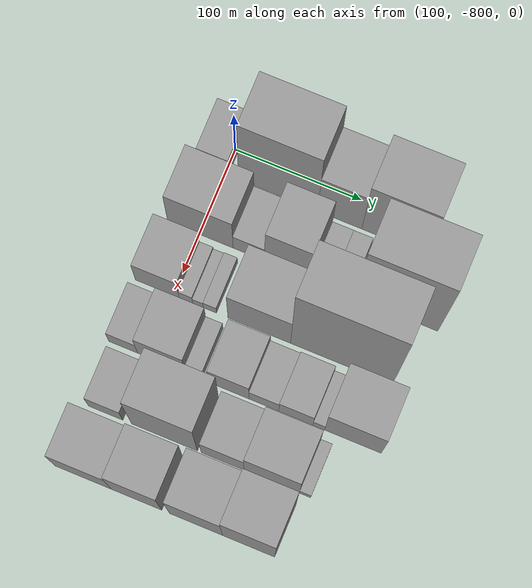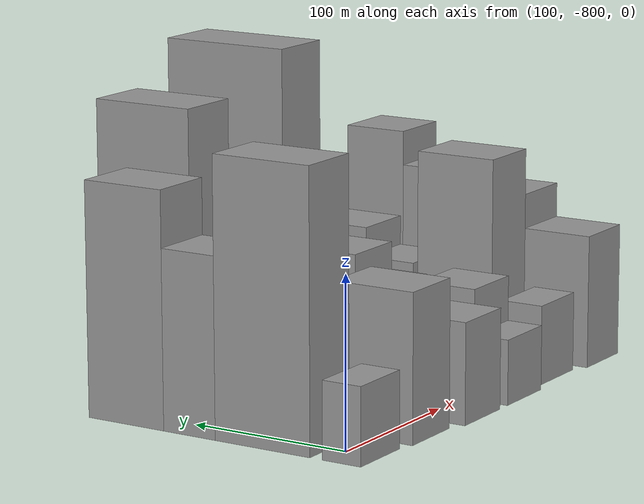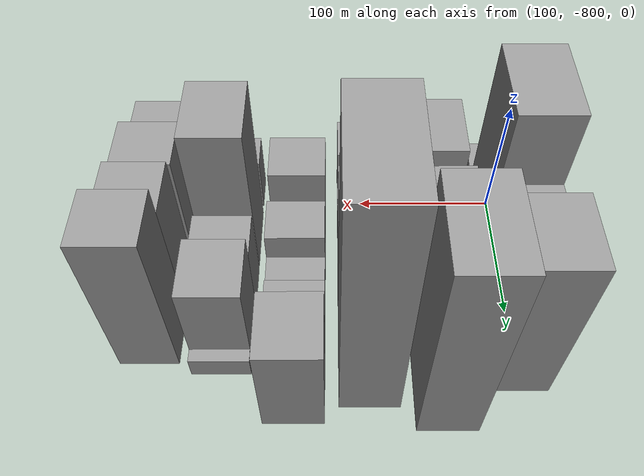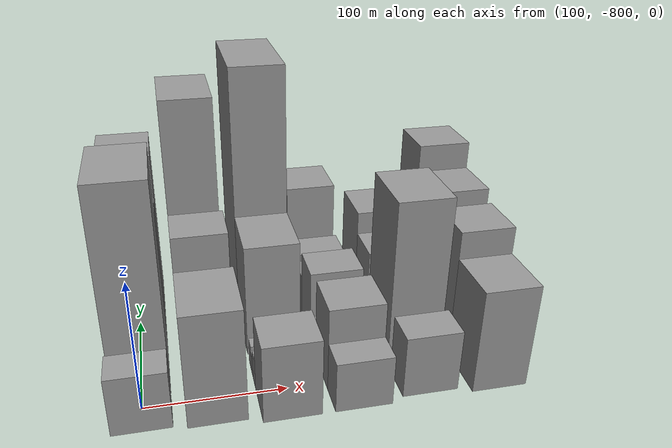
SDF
<sdf version="1.6">
 <world name="default">
  <model name="building_1">
   <static>1</static>
   <pose>100.0000 -809.6743 0 0.000000 0.000000 0.000000</pose>
   <link name="link">
    <pose>0 0 22.50 0 0 0</pose>
    <collision name="collision"><geometry><box><size>40.0000 24.6514 45.0000</size></box></geometry></collision>
    <visual name="visual">
     <cast_shadows>0</cast_shadows>
     <geometry><box><size>40.0000 24.6514 45.0000</size></box></geometry>
     <material>
      <script>
       <uri>model://grey_wall/materials/scripts</uri>
       <uri>model://grey_wall/materials/textures</uri>
       <name>vrc/grey_wall</name>
      </script>
     </material>
    </visual>
   </link>
  </model>
  <model name="building_2">
   <static>1</static>
   <pose>100.0000 -758.1193 0 0.000000 0.000000 0.000000</pose>
   <link name="link">
    <pose>0 0 81.00 0 0 0</pose>
    <collision name="collision"><geometry><box><size>40.0000 62.4585 162.0000</size></box></geometry></collision>
    <visual name="visual">
     <cast_shadows>0</cast_shadows>
     <geometry><box><size>40.0000 62.4585 162.0000</size></box></geometry>
     <material>
      <script>
       <uri>model://grey_wall/materials/scripts</uri>
       <uri>model://grey_wall/materials/textures</uri>
       <name>vrc/grey_wall</name>
      </script>
     </material>
    </visual>
   </link>
  </model>
  <model name="building_3">
   <static>1</static>
   <pose>100.0000 -709.3897 0 0.000000 0.000000 0.000000</pose>
   <link name="link">
    <pose>0 0 52.50 0 0 0</pose>
    <collision name="collision"><geometry><box><size>40.0000 35.0008 105.0000</size></box></geometry></collision>
    <visual name="visual">
     <cast_shadows>0</cast_shadows>
     <geometry><box><size>40.0000 35.0008 105.0000</size></box></geometry>
     <material>
      <script>
       <uri>model://grey_wall/materials/scripts</uri>
       <uri>model://grey_wall/materials/textures</uri>
       <name>vrc/grey_wall</name>
      </script>
     </material>
    </visual>
   </link>
  </model>
  <model name="building_4">
   <static>1</static>
   <pose>100.0000 -665.8691 0 0.000000 0.000000 0.000000</pose>
   <link name="link">
    <pose>0 0 69.00 0 0 0</pose>
    <collision name="collision"><geometry><box><size>40.0000 52.0404 138.0000</size></box></geometry></collision>
    <visual name="visual">
     <cast_shadows>0</cast_shadows>
     <geometry><box><size>40.0000 52.0404 138.0000</size></box></geometry>
     <material>
      <script>
       <uri>model://grey_wall/materials/scripts</uri>
       <uri>model://grey_wall/materials/textures</uri>
       <name>vrc/grey_wall</name>
      </script>
     </material>
    </visual>
   </link>
  </model>
  <model name="building_43">
   <static>1</static>
   <pose>149.0000 -799.1433 0 0.000000 0.000000 0.000000</pose>
   <link name="link">
    <pose>0 0 43.50 0 0 0</pose>
    <collision name="collision"><geometry><box><size>40.0000 51.7134 87.0000</size></box></geometry></collision>
    <visual name="visual">
     <cast_shadows>0</cast_shadows>
     <geometry><box><size>40.0000 51.7134 87.0000</size></box></geometry>
     <material>
      <script>
       <uri>model://grey_wall/materials/scripts</uri>
       <uri>model://grey_wall/materials/textures</uri>
       <name>vrc/grey_wall</name>
      </script>
     </material>
    </visual>
   </link>
  </model>
  <model name="building_44">
   <static>1</static>
   <pose>149.0000 -760.8432 0 0.000000 0.000000 0.000000</pose>
   <link name="link">
    <pose>0 0 21.00 0 0 0</pose>
    <collision name="collision"><geometry><box><size>40.0000 24.8867 42.0000</size></box></geometry></collision>
    <visual name="visual">
     <cast_shadows>0</cast_shadows>
     <geometry><box><size>40.0000 24.8867 42.0000</size></box></geometry>
     <material>
      <script>
       <uri>model://grey_wall/materials/scripts</uri>
       <uri>model://grey_wall/materials/textures</uri>
       <name>vrc/grey_wall</name>
      </script>
     </material>
    </visual>
   </link>
  </model>
  <model name="building_45">
   <static>1</static>
   <pose>149.0000 -730.2889 0 0.000000 0.000000 0.000000</pose>
   <link name="link">
    <pose>0 0 49.50 0 0 0</pose>
    <collision name="collision"><geometry><box><size>40.0000 36.2220 99.0000</size></box></geometry></collision>
    <visual name="visual">
     <cast_shadows>0</cast_shadows>
     <geometry><box><size>40.0000 36.2220 99.0000</size></box></geometry>
     <material>
      <script>
       <uri>model://grey_wall/materials/scripts</uri>
       <uri>model://grey_wall/materials/textures</uri>
       <name>vrc/grey_wall</name>
      </script>
     </material>
    </visual>
   </link>
  </model>
  <model name="building_46">
   <static>1</static>
   <pose>149.0000 -703.9637 0 0.000000 0.000000 0.000000</pose>
   <link name="link">
    <pose>0 0 15.00 0 0 0</pose>
    <collision name="collision"><geometry><box><size>40.0000 16.4283 30.0000</size></box></geometry></collision>
    <visual name="visual">
     <cast_shadows>0</cast_shadows>
     <geometry><box><size>40.0000 16.4283 30.0000</size></box></geometry>
     <material>
      <script>
       <uri>model://grey_wall/materials/scripts</uri>
       <uri>model://grey_wall/materials/textures</uri>
       <name>vrc/grey_wall</name>
      </script>
     </material>
    </visual>
   </link>
  </model>
  <model name="building_47">
   <static>1</static>
   <pose>149.0000 -688.1897 0 0.000000 0.000000 0.000000</pose>
   <link name="link">
    <pose>0 0 15.00 0 0 0</pose>
    <collision name="collision"><geometry><box><size>40.0000 15.1197 30.0000</size></box></geometry></collision>
    <visual name="visual">
     <cast_shadows>0</cast_shadows>
     <geometry><box><size>40.0000 15.1197 30.0000</size></box></geometry>
     <material>
      <script>
       <uri>model://grey_wall/materials/scripts</uri>
       <uri>model://grey_wall/materials/textures</uri>
       <name>vrc/grey_wall</name>
      </script>
     </material>
    </visual>
   </link>
  </model>
  <model name="building_48">
   <static>1</static>
   <pose>149.0000 -644.5503 0 0.000000 0.000000 0.000000</pose>
   <link name="link">
    <pose>0 0 87.00 0 0 0</pose>
    <collision name="collision"><geometry><box><size>40.0000 64.1589 174.0000</size></box></geometry></collision>
    <visual name="visual">
     <cast_shadows>0</cast_shadows>
     <geometry><box><size>40.0000 64.1589 174.0000</size></box></geometry>
     <material>
      <script>
       <uri>model://grey_wall/materials/scripts</uri>
       <uri>model://grey_wall/materials/textures</uri>
       <name>vrc/grey_wall</name>
      </script>
     </material>
    </visual>
   </link>
  </model>
  <model name="building_88">
   <static>1</static>
   <pose>198.0000 -812.7470 0 0.000000 0.000000 0.000000</pose>
   <link name="link">
    <pose>0 0 30.00 0 0 0</pose>
    <collision name="collision"><geometry><box><size>40.0000 34.5060 60.0000</size></box></geometry></collision>
    <visual name="visual">
     <cast_shadows>0</cast_shadows>
     <geometry><box><size>40.0000 34.5060 60.0000</size></box></geometry>
     <material>
      <script>
       <uri>model://grey_wall/materials/scripts</uri>
       <uri>model://grey_wall/materials/textures</uri>
       <name>vrc/grey_wall</name>
      </script>
     </material>
    </visual>
   </link>
  </model>
  <model name="building_89">
   <static>1</static>
   <pose>198.0000 -790.1452 0 0.000000 0.000000 0.000000</pose>
   <link name="link">
    <pose>0 0 12.00 0 0 0</pose>
    <collision name="collision"><geometry><box><size>40.0000 10.6977 24.0000</size></box></geometry></collision>
    <visual name="visual">
     <cast_shadows>0</cast_shadows>
     <geometry><box><size>40.0000 10.6977 24.0000</size></box></geometry>
     <material>
      <script>
       <uri>model://grey_wall/materials/scripts</uri>
       <uri>model://grey_wall/materials/textures</uri>
       <name>vrc/grey_wall</name>
      </script>
     </material>
    </visual>
   </link>
  </model>
  <model name="building_90">
   <static>1</static>
   <pose>198.0000 -780.5945 0 0.000000 0.000000 0.000000</pose>
   <link name="link">
    <pose>0 0 9.00 0 0 0</pose>
    <collision name="collision"><geometry><box><size>40.0000 8.4039 18.0000</size></box></geometry></collision>
    <visual name="visual">
     <cast_shadows>0</cast_shadows>
     <geometry><box><size>40.0000 8.4039 18.0000</size></box></geometry>
     <material>
      <script>
       <uri>model://grey_wall/materials/scripts</uri>
       <uri>model://grey_wall/materials/textures</uri>
       <name>vrc/grey_wall</name>
      </script>
     </material>
    </visual>
   </link>
  </model>
  <model name="building_91">
   <static>1</static>
   <pose>198.0000 -771.1914 0 0.000000 0.000000 0.000000</pose>
   <link name="link">
    <pose>0 0 10.50 0 0 0</pose>
    <collision name="collision"><geometry><box><size>40.0000 10.4023 21.0000</size></box></geometry></collision>
    <visual name="visual">
     <cast_shadows>0</cast_shadows>
     <geometry><box><size>40.0000 10.4023 21.0000</size></box></geometry>
     <material>
      <script>
       <uri>model://grey_wall/materials/scripts</uri>
       <uri>model://grey_wall/materials/textures</uri>
       <name>vrc/grey_wall</name>
      </script>
     </material>
    </visual>
   </link>
  </model>
  <model name="building_92">
   <static>1</static>
   <pose>198.0000 -732.4139 0 0.000000 0.000000 0.000000</pose>
   <link name="link">
    <pose>0 0 45.00 0 0 0</pose>
    <collision name="collision"><geometry><box><size>40.0000 49.1527 90.0000</size></box></geometry></collision>
    <visual name="visual">
     <cast_shadows>0</cast_shadows>
     <geometry><box><size>40.0000 49.1527 90.0000</size></box></geometry>
     <material>
      <script>
       <uri>model://grey_wall/materials/scripts</uri>
       <uri>model://grey_wall/materials/textures</uri>
       <name>vrc/grey_wall</name>
      </script>
     </material>
    </visual>
   </link>
  </model>
  <model name="building_93">
   <static>1</static>
   <pose>198.0000 -668.1284 0 0.000000 0.000000 0.000000</pose>
   <link name="link">
    <pose>0 0 102.00 0 0 0</pose>
    <collision name="collision"><geometry><box><size>40.0000 79.4184 204.0000</size></box></geometry></collision>
    <visual name="visual">
     <cast_shadows>0</cast_shadows>
     <geometry><box><size>40.0000 79.4184 204.0000</size></box></geometry>
     <material>
      <script>
       <uri>model://grey_wall/materials/scripts</uri>
       <uri>model://grey_wall/materials/textures</uri>
       <name>vrc/grey_wall</name>
      </script>
     </material>
    </visual>
   </link>
  </model>
  <model name="building_132">
   <static>1</static>
   <pose>247.0000 -818.7364 0 0.000000 0.000000 0.000000</pose>
   <link name="link">
    <pose>0 0 19.50 0 0 0</pose>
    <collision name="collision"><geometry><box><size>40.0000 22.5273 39.0000</size></box></geometry></collision>
    <visual name="visual">
     <cast_shadows>0</cast_shadows>
     <geometry><box><size>40.0000 22.5273 39.0000</size></box></geometry>
     <material>
      <script>
       <uri>model://grey_wall/materials/scripts</uri>
       <uri>model://grey_wall/materials/textures</uri>
       <name>vrc/grey_wall</name>
      </script>
     </material>
    </visual>
   </link>
  </model>
  <model name="building_133">
   <static>1</static>
   <pose>247.0000 -788.8290 0 0.000000 0.000000 0.000000</pose>
   <link name="link">
    <pose>0 0 33.00 0 0 0</pose>
    <collision name="collision"><geometry><box><size>40.0000 37.2874 66.0000</size></box></geometry></collision>
    <visual name="visual">
     <cast_shadows>0</cast_shadows>
     <geometry><box><size>40.0000 37.2874 66.0000</size></box></geometry>
     <material>
      <script>
       <uri>model://grey_wall/materials/scripts</uri>
       <uri>model://grey_wall/materials/textures</uri>
       <name>vrc/grey_wall</name>
      </script>
     </material>
    </visual>
   </link>
  </model>
  <model name="building_134">
   <static>1</static>
   <pose>247.0000 -763.6136 0 0.000000 0.000000 0.000000</pose>
   <link name="link">
    <pose>0 0 13.50 0 0 0</pose>
    <collision name="collision"><geometry><box><size>40.0000 13.1435 27.0000</size></box></geometry></collision>
    <visual name="visual">
     <cast_shadows>0</cast_shadows>
     <geometry><box><size>40.0000 13.1435 27.0000</size></box></geometry>
     <material>
      <script>
       <uri>model://grey_wall/materials/scripts</uri>
       <uri>model://grey_wall/materials/textures</uri>
       <name>vrc/grey_wall</name>
      </script>
     </material>
    </visual>
   </link>
  </model>
  <model name="building_135">
   <static>1</static>
   <pose>247.0000 -736.0739 0 0.000000 0.000000 0.000000</pose>
   <link name="link">
    <pose>0 0 30.00 0 0 0</pose>
    <collision name="collision"><geometry><box><size>40.0000 31.9359 60.0000</size></box></geometry></collision>
    <visual name="visual">
     <cast_shadows>0</cast_shadows>
     <geometry><box><size>40.0000 31.9359 60.0000</size></box></geometry>
     <material>
      <script>
       <uri>model://grey_wall/materials/scripts</uri>
       <uri>model://grey_wall/materials/textures</uri>
       <name>vrc/grey_wall</name>
      </script>
     </material>
    </visual>
   </link>
  </model>
  <model name="building_136">
   <static>1</static>
   <pose>247.0000 -708.5276 0 0.000000 0.000000 0.000000</pose>
   <link name="link">
    <pose>0 0 19.50 0 0 0</pose>
    <collision name="collision"><geometry><box><size>40.0000 23.1567 39.0000</size></box></geometry></collision>
    <visual name="visual">
     <cast_shadows>0</cast_shadows>
     <geometry><box><size>40.0000 23.1567 39.0000</size></box></geometry>
     <material>
      <script>
       <uri>model://grey_wall/materials/scripts</uri>
       <uri>model://grey_wall/materials/textures</uri>
       <name>vrc/grey_wall</name>
      </script>
     </material>
    </visual>
   </link>
  </model>
  <model name="building_137">
   <static>1</static>
   <pose>247.0000 -683.6351 0 0.000000 0.000000 0.000000</pose>
   <link name="link">
    <pose>0 0 22.50 0 0 0</pose>
    <collision name="collision"><geometry><box><size>40.0000 26.6282 45.0000</size></box></geometry></collision>
    <visual name="visual">
     <cast_shadows>0</cast_shadows>
     <geometry><box><size>40.0000 26.6282 45.0000</size></box></geometry>
     <material>
      <script>
       <uri>model://grey_wall/materials/scripts</uri>
       <uri>model://grey_wall/materials/textures</uri>
       <name>vrc/grey_wall</name>
      </script>
     </material>
    </visual>
   </link>
  </model>
  <model name="building_138">
   <static>1</static>
   <pose>247.0000 -665.7167 0 0.000000 0.000000 0.000000</pose>
   <link name="link">
    <pose>0 0 10.50 0 0 0</pose>
    <collision name="collision"><geometry><box><size>40.0000 9.2086 21.0000</size></box></geometry></collision>
    <visual name="visual">
     <cast_shadows>0</cast_shadows>
     <geometry><box><size>40.0000 9.2086 21.0000</size></box></geometry>
     <material>
      <script>
       <uri>model://grey_wall/materials/scripts</uri>
       <uri>model://grey_wall/materials/textures</uri>
       <name>vrc/grey_wall</name>
      </script>
     </material>
    </visual>
   </link>
  </model>
  <model name="building_139">
   <static>1</static>
   <pose>247.0000 -639.1347 0 0.000000 0.000000 0.000000</pose>
   <link name="link">
    <pose>0 0 43.50 0 0 0</pose>
    <collision name="collision"><geometry><box><size>40.0000 43.9554 87.0000</size></box></geometry></collision>
    <visual name="visual">
     <cast_shadows>0</cast_shadows>
     <geometry><box><size>40.0000 43.9554 87.0000</size></box></geometry>
     <material>
      <script>
       <uri>model://grey_wall/materials/scripts</uri>
       <uri>model://grey_wall/materials/textures</uri>
       <name>vrc/grey_wall</name>
      </script>
     </material>
    </visual>
   </link>
  </model>
  <model name="building_179">
   <static>1</static>
   <pose>296.0000 -811.6144 0 0.000000 0.000000 0.000000</pose>
   <link name="link">
    <pose>0 0 24.00 0 0 0</pose>
    <collision name="collision"><geometry><box><size>40.0000 26.7713 48.0000</size></box></geometry></collision>
    <visual name="visual">
     <cast_shadows>0</cast_shadows>
     <geometry><box><size>40.0000 26.7713 48.0000</size></box></geometry>
     <material>
      <script>
       <uri>model://grey_wall/materials/scripts</uri>
       <uri>model://grey_wall/materials/textures</uri>
       <name>vrc/grey_wall</name>
      </script>
     </material>
    </visual>
   </link>
  </model>
  <model name="building_180">
   <static>1</static>
   <pose>296.0000 -765.5930 0 0.000000 0.000000 0.000000</pose>
   <link name="link">
    <pose>0 0 66.00 0 0 0</pose>
    <collision name="collision"><geometry><box><size>40.0000 51.2715 132.0000</size></box></geometry></collision>
    <visual name="visual">
     <cast_shadows>0</cast_shadows>
     <geometry><box><size>40.0000 51.2715 132.0000</size></box></geometry>
     <material>
      <script>
       <uri>model://grey_wall/materials/scripts</uri>
       <uri>model://grey_wall/materials/textures</uri>
       <name>vrc/grey_wall</name>
      </script>
     </material>
    </visual>
   </link>
  </model>
  <model name="building_181">
   <static>1</static>
   <pose>296.0000 -720.2961 0 0.000000 0.000000 0.000000</pose>
   <link name="link">
    <pose>0 0 31.50 0 0 0</pose>
    <collision name="collision"><geometry><box><size>40.0000 33.3223 63.0000</size></box></geometry></collision>
    <visual name="visual">
     <cast_shadows>0</cast_shadows>
     <geometry><box><size>40.0000 33.3223 63.0000</size></box></geometry>
     <material>
      <script>
       <uri>model://grey_wall/materials/scripts</uri>
       <uri>model://grey_wall/materials/textures</uri>
       <name>vrc/grey_wall</name>
      </script>
     </material>
    </visual>
   </link>
  </model>
  <model name="building_182">
   <static>1</static>
   <pose>296.0000 -682.2127 0 0.000000 0.000000 0.000000</pose>
   <link name="link">
    <pose>0 0 40.50 0 0 0</pose>
    <collision name="collision"><geometry><box><size>40.0000 42.8445 81.0000</size></box></geometry></collision>
    <visual name="visual">
     <cast_shadows>0</cast_shadows>
     <geometry><box><size>40.0000 42.8445 81.0000</size></box></geometry>
     <material>
      <script>
       <uri>model://grey_wall/materials/scripts</uri>
       <uri>model://grey_wall/materials/textures</uri>
       <name>vrc/grey_wall</name>
      </script>
     </material>
    </visual>
   </link>
  </model>
  <model name="building_183">
   <static>1</static>
   <pose>296.0000 -656.3661 0 0.000000 0.000000 0.000000</pose>
   <link name="link">
    <pose>0 0 9.00 0 0 0</pose>
    <collision name="collision"><geometry><box><size>40.0000 8.8486 18.0000</size></box></geometry></collision>
    <visual name="visual">
     <cast_shadows>0</cast_shadows>
     <geometry><box><size>40.0000 8.8486 18.0000</size></box></geometry>
     <material>
      <script>
       <uri>model://grey_wall/materials/scripts</uri>
       <uri>model://grey_wall/materials/textures</uri>
       <name>vrc/grey_wall</name>
      </script>
     </material>
    </visual>
   </link>
  </model>
  <model name="building_223">
   <static>1</static>
   <pose>345.0000 -808.1364 0 0.000000 0.000000 0.000000</pose>
   <link name="link">
    <pose>0 0 40.50 0 0 0</pose>
    <collision name="collision"><geometry><box><size>40.0000 43.7272 81.0000</size></box></geometry></collision>
    <visual name="visual">
     <cast_shadows>0</cast_shadows>
     <geometry><box><size>40.0000 43.7272 81.0000</size></box></geometry>
     <material>
      <script>
       <uri>model://grey_wall/materials/scripts</uri>
       <uri>model://grey_wall/materials/textures</uri>
       <name>vrc/grey_wall</name>
      </script>
     </material>
    </visual>
   </link>
  </model>
  <model name="building_224">
   <static>1</static>
   <pose>345.0000 -766.6770 0 0.000000 0.000000 0.000000</pose>
   <link name="link">
    <pose>0 0 51.00 0 0 0</pose>
    <collision name="collision"><geometry><box><size>40.0000 39.1915 102.0000</size></box></geometry></collision>
    <visual name="visual">
     <cast_shadows>0</cast_shadows>
     <geometry><box><size>40.0000 39.1915 102.0000</size></box></geometry>
     <material>
      <script>
       <uri>model://grey_wall/materials/scripts</uri>
       <uri>model://grey_wall/materials/textures</uri>
       <name>vrc/grey_wall</name>
      </script>
     </material>
    </visual>
   </link>
  </model>
  <model name="building_225">
   <static>1</static>
   <pose>345.0000 -720.5396 0 0.000000 0.000000 0.000000</pose>
   <link name="link">
    <pose>0 0 55.50 0 0 0</pose>
    <collision name="collision"><geometry><box><size>40.0000 41.0833 111.0000</size></box></geometry></collision>
    <visual name="visual">
     <cast_shadows>0</cast_shadows>
     <geometry><box><size>40.0000 41.0833 111.0000</size></box></geometry>
     <material>
      <script>
       <uri>model://grey_wall/materials/scripts</uri>
       <uri>model://grey_wall/materials/textures</uri>
       <name>vrc/grey_wall</name>
      </script>
     </material>
    </visual>
   </link>
  </model>
  <model name="building_226">
   <static>1</static>
   <pose>345.0000 -679.8378 0 0.000000 0.000000 0.000000</pose>
   <link name="link">
    <pose>0 0 66.00 0 0 0</pose>
    <collision name="collision"><geometry><box><size>40.0000 40.3203 132.0000</size></box></geometry></collision>
    <visual name="visual">
     <cast_shadows>0</cast_shadows>
     <geometry><box><size>40.0000 40.3203 132.0000</size></box></geometry>
     <material>
      <script>
       <uri>model://grey_wall/materials/scripts</uri>
       <uri>model://grey_wall/materials/textures</uri>
       <name>vrc/grey_wall</name>
      </script>
     </material>
    </visual>
   </link>
  </model>
 </world>
</sdf>
